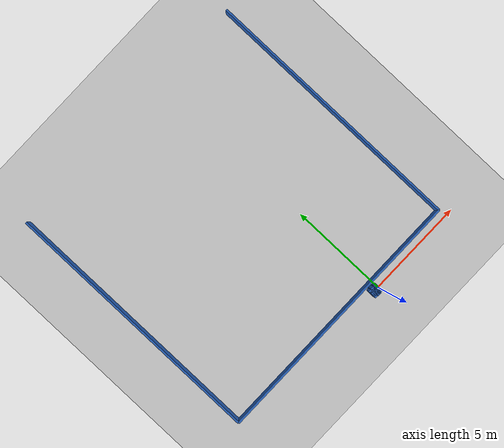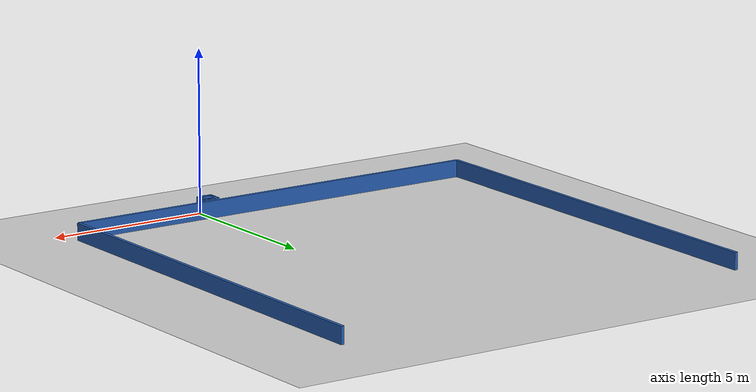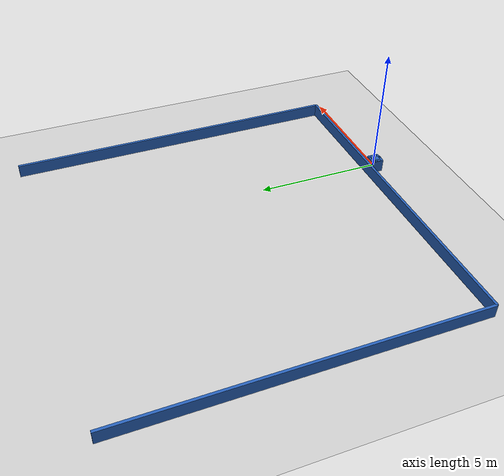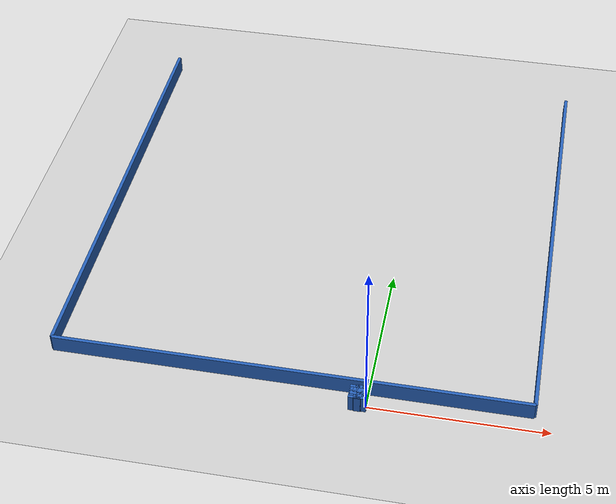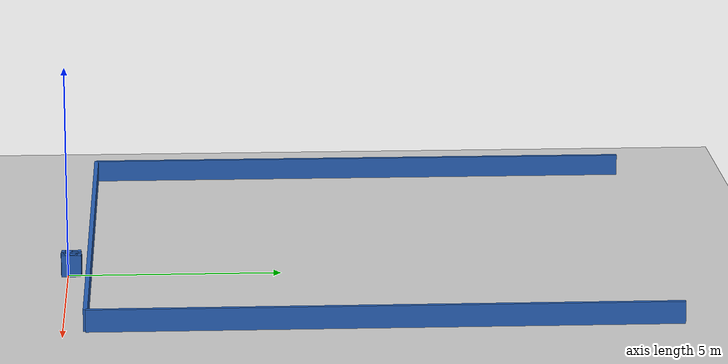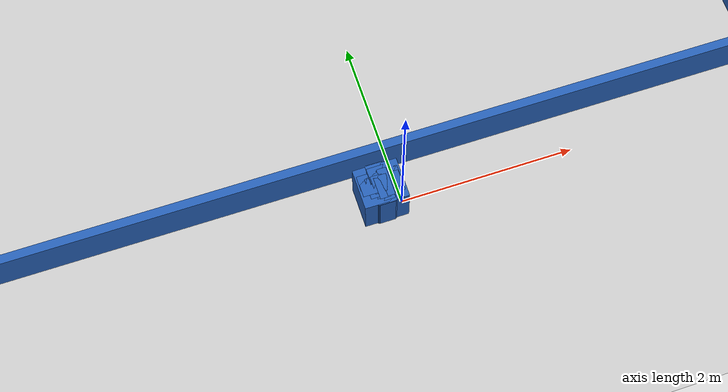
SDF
<?xml version="1.0" ?>
    <sdf version="1.5">
      <world name="default">
        <!-- A global light source -->
        <include>
          <uri>model://sun</uri>
        </include>
        <!-- A ground plane -->
        <include>
          <uri>model://ground_plane</uri>
        </include>

    <model name='libopen_space_final_T2B_148_40'>
      <static>1</static>
      <pose frame=''>-0.225000 0.075000 0.000000 0.000000 0.000000 0.000000</pose>
      <link name='link'>
        <inertial>
          <mass>1</mass>
          <inertia>
            <ixx>0.145833</ixx>
            <ixy>0</ixy>
            <ixz>0</ixz>
            <iyy>0.145833</iyy>
            <iyz>0</iyz>
            <izz>0.125</izz>
          </inertia>
        </inertial>
        <collision name='collision'>
          <geometry>
            <box>
              <size>0.18 0.21 1</size>
            </box>
          </geometry>
          <max_contacts>10</max_contacts>
          <surface>
            <contact>
              <ode/>
            </contact>
            <bounce/>
            <friction>
              <torsional>
                <ode/>
              </torsional>
              <ode/>
            </friction>
          </surface>
        </collision>
        <visual name='visual'>
          <geometry>
            <box>
              <size>0.18 0.21 1</size>
            </box>
          </geometry>
	    <material>
              <ambient>0.152000 0.379000 0.720000 1</ambient>
	      <diffuse>0.152000 0.379000 0.720000 1</diffuse>
          </material>
          <material>
            <script>
              <name>Gazebo/Grey</name>
              <uri>file://media/materials/scripts/gazebo.material</uri>
            </script>
          </material>
        </visual>
        <self_collide>0</self_collide>
        <kinematic>0</kinematic>
        <gravity>1</gravity>
      </link>
      <plugin name='libopen_space_final_T2B_148_40' filename='libopen_space_final_T2B_148_40.so'/>
    </model>

    <model name='libopen_space_final_T2B_64_52'>
      <static>1</static>
      <pose frame=''>-0.225000 0.075000 0.000000 0.000000 0.000000 0.000000</pose>
      <link name='link'>
        <inertial>
          <mass>1</mass>
          <inertia>
            <ixx>0.145833</ixx>
            <ixy>0</ixy>
            <ixz>0</ixz>
            <iyy>0.145833</iyy>
            <iyz>0</iyz>
            <izz>0.125</izz>
          </inertia>
        </inertial>
        <collision name='collision'>
          <geometry>
            <box>
              <size>0.31 0.29 1</size>
            </box>
          </geometry>
          <max_contacts>10</max_contacts>
          <surface>
            <contact>
              <ode/>
            </contact>
            <bounce/>
            <friction>
              <torsional>
                <ode/>
              </torsional>
              <ode/>
            </friction>
          </surface>
        </collision>
        <visual name='visual'>
          <geometry>
            <box>
              <size>0.31 0.29 1</size>
            </box>
          </geometry>
	    <material>
              <ambient>0.152000 0.379000 0.720000 1</ambient>
	      <diffuse>0.152000 0.379000 0.720000 1</diffuse>
          </material>
          <material>
            <script>
              <name>Gazebo/Grey</name>
              <uri>file://media/materials/scripts/gazebo.material</uri>
            </script>
          </material>
        </visual>
        <self_collide>0</self_collide>
        <kinematic>0</kinematic>
        <gravity>1</gravity>
      </link>
      <plugin name='libopen_space_final_T2B_64_52' filename='libopen_space_final_T2B_64_52.so'/>
    </model>

    <model name='libopen_space_final_T2B_90_15'>
      <static>1</static>
      <pose frame=''>-0.225000 0.075000 0.000000 0.000000 0.000000 0.000000</pose>
      <link name='link'>
        <inertial>
          <mass>1</mass>
          <inertia>
            <ixx>0.145833</ixx>
            <ixy>0</ixy>
            <ixz>0</ixz>
            <iyy>0.145833</iyy>
            <iyz>0</iyz>
            <izz>0.125</izz>
          </inertia>
        </inertial>
        <collision name='collision'>
          <geometry>
            <box>
              <size>0.18 0.49 1</size>
            </box>
          </geometry>
          <max_contacts>10</max_contacts>
          <surface>
            <contact>
              <ode/>
            </contact>
            <bounce/>
            <friction>
              <torsional>
                <ode/>
              </torsional>
              <ode/>
            </friction>
          </surface>
        </collision>
        <visual name='visual'>
          <geometry>
            <box>
              <size>0.18 0.49 1</size>
            </box>
          </geometry>
	    <material>
              <ambient>0.152000 0.379000 0.720000 1</ambient>
	      <diffuse>0.152000 0.379000 0.720000 1</diffuse>
          </material>
          <material>
            <script>
              <name>Gazebo/Grey</name>
              <uri>file://media/materials/scripts/gazebo.material</uri>
            </script>
          </material>
        </visual>
        <self_collide>0</self_collide>
        <kinematic>0</kinematic>
        <gravity>1</gravity>
      </link>
      <plugin name='libopen_space_final_T2B_90_15' filename='libopen_space_final_T2B_90_15.so'/>
    </model>

    <model name='libopen_space_final_T2B_111_18'>
      <static>1</static>
      <pose frame=''>-0.225000 0.075000 0.000000 0.000000 0.000000 0.000000</pose>
      <link name='link'>
        <inertial>
          <mass>1</mass>
          <inertia>
            <ixx>0.145833</ixx>
            <ixy>0</ixy>
            <ixz>0</ixz>
            <iyy>0.145833</iyy>
            <iyz>0</iyz>
            <izz>0.125</izz>
          </inertia>
        </inertial>
        <collision name='collision'>
          <geometry>
            <box>
              <size>0.20 0.41 1</size>
            </box>
          </geometry>
          <max_contacts>10</max_contacts>
          <surface>
            <contact>
              <ode/>
            </contact>
            <bounce/>
            <friction>
              <torsional>
                <ode/>
              </torsional>
              <ode/>
            </friction>
          </surface>
        </collision>
        <visual name='visual'>
          <geometry>
            <box>
              <size>0.20 0.41 1</size>
            </box>
          </geometry>
	    <material>
              <ambient>0.152000 0.379000 0.720000 1</ambient>
	      <diffuse>0.152000 0.379000 0.720000 1</diffuse>
          </material>
          <material>
            <script>
              <name>Gazebo/Grey</name>
              <uri>file://media/materials/scripts/gazebo.material</uri>
            </script>
          </material>
        </visual>
        <self_collide>0</self_collide>
        <kinematic>0</kinematic>
        <gravity>1</gravity>
      </link>
      <plugin name='libopen_space_final_T2B_111_18' filename='libopen_space_final_T2B_111_18.so'/>
    </model>

    <model name='libopen_space_final_T2B_115_16'>
      <static>1</static>
      <pose frame=''>-0.225000 0.075000 0.000000 0.000000 0.000000 0.000000</pose>
      <link name='link'>
        <inertial>
          <mass>1</mass>
          <inertia>
            <ixx>0.145833</ixx>
            <ixy>0</ixy>
            <ixz>0</ixz>
            <iyy>0.145833</iyy>
            <iyz>0</iyz>
            <izz>0.125</izz>
          </inertia>
        </inertial>
        <collision name='collision'>
          <geometry>
            <box>
              <size>0.12 0.35 1</size>
            </box>
          </geometry>
          <max_contacts>10</max_contacts>
          <surface>
            <contact>
              <ode/>
            </contact>
            <bounce/>
            <friction>
              <torsional>
                <ode/>
              </torsional>
              <ode/>
            </friction>
          </surface>
        </collision>
        <visual name='visual'>
          <geometry>
            <box>
              <size>0.12 0.35 1</size>
            </box>
          </geometry>
	    <material>
              <ambient>0.152000 0.379000 0.720000 1</ambient>
	      <diffuse>0.152000 0.379000 0.720000 1</diffuse>
          </material>
          <material>
            <script>
              <name>Gazebo/Grey</name>
              <uri>file://media/materials/scripts/gazebo.material</uri>
            </script>
          </material>
        </visual>
        <self_collide>0</self_collide>
        <kinematic>0</kinematic>
        <gravity>1</gravity>
      </link>
      <plugin name='libopen_space_final_T2B_115_16' filename='libopen_space_final_T2B_115_16.so'/>
    </model>

    <model name='libopen_space_final_T2B_90_76'>
      <static>1</static>
      <pose frame=''>-0.225000 0.075000 0.000000 0.000000 0.000000 0.000000</pose>
      <link name='link'>
        <inertial>
          <mass>1</mass>
          <inertia>
            <ixx>0.145833</ixx>
            <ixy>0</ixy>
            <ixz>0</ixz>
            <iyy>0.145833</iyy>
            <iyz>0</iyz>
            <izz>0.125</izz>
          </inertia>
        </inertial>
        <collision name='collision'>
          <geometry>
            <box>
              <size>0.29 0.20 1</size>
            </box>
          </geometry>
          <max_contacts>10</max_contacts>
          <surface>
            <contact>
              <ode/>
            </contact>
            <bounce/>
            <friction>
              <torsional>
                <ode/>
              </torsional>
              <ode/>
            </friction>
          </surface>
        </collision>
        <visual name='visual'>
          <geometry>
            <box>
              <size>0.29 0.20 1</size>
            </box>
          </geometry>
	    <material>
              <ambient>0.152000 0.379000 0.720000 1</ambient>
	      <diffuse>0.152000 0.379000 0.720000 1</diffuse>
          </material>
          <material>
            <script>
              <name>Gazebo/Grey</name>
              <uri>file://media/materials/scripts/gazebo.material</uri>
            </script>
          </material>
        </visual>
        <self_collide>0</self_collide>
        <kinematic>0</kinematic>
        <gravity>1</gravity>
      </link>
      <plugin name='libopen_space_final_T2B_90_76' filename='libopen_space_final_T2B_90_76.so'/>
    </model>

    <model name='libopen_space_final_T2B_119_99'>
      <static>1</static>
      <pose frame=''>-0.225000 0.075000 0.000000 0.000000 0.000000 0.000000</pose>
      <link name='link'>
        <inertial>
          <mass>1</mass>
          <inertia>
            <ixx>0.145833</ixx>
            <ixy>0</ixy>
            <ixz>0</ixz>
            <iyy>0.145833</iyy>
            <iyz>0</iyz>
            <izz>0.125</izz>
          </inertia>
        </inertial>
        <collision name='collision'>
          <geometry>
            <box>
              <size>0.21 0.48 1</size>
            </box>
          </geometry>
          <max_contacts>10</max_contacts>
          <surface>
            <contact>
              <ode/>
            </contact>
            <bounce/>
            <friction>
              <torsional>
                <ode/>
              </torsional>
              <ode/>
            </friction>
          </surface>
        </collision>
        <visual name='visual'>
          <geometry>
            <box>
              <size>0.21 0.48 1</size>
            </box>
          </geometry>
	    <material>
              <ambient>0.152000 0.379000 0.720000 1</ambient>
	      <diffuse>0.152000 0.379000 0.720000 1</diffuse>
          </material>
          <material>
            <script>
              <name>Gazebo/Grey</name>
              <uri>file://media/materials/scripts/gazebo.material</uri>
            </script>
          </material>
        </visual>
        <self_collide>0</self_collide>
        <kinematic>0</kinematic>
        <gravity>1</gravity>
      </link>
      <plugin name='libopen_space_final_T2B_119_99' filename='libopen_space_final_T2B_119_99.so'/>
    </model>

    <model name='libopen_space_final_T2B_90_95'>
      <static>1</static>
      <pose frame=''>-0.225000 0.075000 0.000000 0.000000 0.000000 0.000000</pose>
      <link name='link'>
        <inertial>
          <mass>1</mass>
          <inertia>
            <ixx>0.145833</ixx>
            <ixy>0</ixy>
            <ixz>0</ixz>
            <iyy>0.145833</iyy>
            <iyz>0</iyz>
            <izz>0.125</izz>
          </inertia>
        </inertial>
        <collision name='collision'>
          <geometry>
            <box>
              <size>0.45 0.19 1</size>
            </box>
          </geometry>
          <max_contacts>10</max_contacts>
          <surface>
            <contact>
              <ode/>
            </contact>
            <bounce/>
            <friction>
              <torsional>
                <ode/>
              </torsional>
              <ode/>
            </friction>
          </surface>
        </collision>
        <visual name='visual'>
          <geometry>
            <box>
              <size>0.45 0.19 1</size>
            </box>
          </geometry>
	    <material>
              <ambient>0.152000 0.379000 0.720000 1</ambient>
	      <diffuse>0.152000 0.379000 0.720000 1</diffuse>
          </material>
          <material>
            <script>
              <name>Gazebo/Grey</name>
              <uri>file://media/materials/scripts/gazebo.material</uri>
            </script>
          </material>
        </visual>
        <self_collide>0</self_collide>
        <kinematic>0</kinematic>
        <gravity>1</gravity>
      </link>
      <plugin name='libopen_space_final_T2B_90_95' filename='libopen_space_final_T2B_90_95.so'/>
    </model>

    <model name='libopen_space_final_T2B_56_75'>
      <static>1</static>
      <pose frame=''>-0.225000 0.075000 0.000000 0.000000 0.000000 0.000000</pose>
      <link name='link'>
        <inertial>
          <mass>1</mass>
          <inertia>
            <ixx>0.145833</ixx>
            <ixy>0</ixy>
            <ixz>0</ixz>
            <iyy>0.145833</iyy>
            <iyz>0</iyz>
            <izz>0.125</izz>
          </inertia>
        </inertial>
        <collision name='collision'>
          <geometry>
            <box>
              <size>0.46 0.30 1</size>
            </box>
          </geometry>
          <max_contacts>10</max_contacts>
          <surface>
            <contact>
              <ode/>
            </contact>
            <bounce/>
            <friction>
              <torsional>
                <ode/>
              </torsional>
              <ode/>
            </friction>
          </surface>
        </collision>
        <visual name='visual'>
          <geometry>
            <box>
              <size>0.46 0.30 1</size>
            </box>
          </geometry>
	    <material>
              <ambient>0.152000 0.379000 0.720000 1</ambient>
	      <diffuse>0.152000 0.379000 0.720000 1</diffuse>
          </material>
          <material>
            <script>
              <name>Gazebo/Grey</name>
              <uri>file://media/materials/scripts/gazebo.material</uri>
            </script>
          </material>
        </visual>
        <self_collide>0</self_collide>
        <kinematic>0</kinematic>
        <gravity>1</gravity>
      </link>
      <plugin name='libopen_space_final_T2B_56_75' filename='libopen_space_final_T2B_56_75.so'/>
    </model>

    <model name='libopen_space_final_T2B_123_13'>
      <static>1</static>
      <pose frame=''>-0.225000 0.075000 0.000000 0.000000 0.000000 0.000000</pose>
      <link name='link'>
        <inertial>
          <mass>1</mass>
          <inertia>
            <ixx>0.145833</ixx>
            <ixy>0</ixy>
            <ixz>0</ixz>
            <iyy>0.145833</iyy>
            <iyz>0</iyz>
            <izz>0.125</izz>
          </inertia>
        </inertial>
        <collision name='collision'>
          <geometry>
            <box>
              <size>0.22 0.33 1</size>
            </box>
          </geometry>
          <max_contacts>10</max_contacts>
          <surface>
            <contact>
              <ode/>
            </contact>
            <bounce/>
            <friction>
              <torsional>
                <ode/>
              </torsional>
              <ode/>
            </friction>
          </surface>
        </collision>
        <visual name='visual'>
          <geometry>
            <box>
              <size>0.22 0.33 1</size>
            </box>
          </geometry>
	    <material>
              <ambient>0.152000 0.379000 0.720000 1</ambient>
	      <diffuse>0.152000 0.379000 0.720000 1</diffuse>
          </material>
          <material>
            <script>
              <name>Gazebo/Grey</name>
              <uri>file://media/materials/scripts/gazebo.material</uri>
            </script>
          </material>
        </visual>
        <self_collide>0</self_collide>
        <kinematic>0</kinematic>
        <gravity>1</gravity>
      </link>
      <plugin name='libopen_space_final_T2B_123_13' filename='libopen_space_final_T2B_123_13.so'/>
    </model>

    <model name='libopen_space_final_T2B_85_62'>
      <static>1</static>
      <pose frame=''>-0.225000 0.075000 0.000000 0.000000 0.000000 0.000000</pose>
      <link name='link'>
        <inertial>
          <mass>1</mass>
          <inertia>
            <ixx>0.145833</ixx>
            <ixy>0</ixy>
            <ixz>0</ixz>
            <iyy>0.145833</iyy>
            <iyz>0</iyz>
            <izz>0.125</izz>
          </inertia>
        </inertial>
        <collision name='collision'>
          <geometry>
            <box>
              <size>0.50 0.46 1</size>
            </box>
          </geometry>
          <max_contacts>10</max_contacts>
          <surface>
            <contact>
              <ode/>
            </contact>
            <bounce/>
            <friction>
              <torsional>
                <ode/>
              </torsional>
              <ode/>
            </friction>
          </surface>
        </collision>
        <visual name='visual'>
          <geometry>
            <box>
              <size>0.50 0.46 1</size>
            </box>
          </geometry>
	    <material>
              <ambient>0.152000 0.379000 0.720000 1</ambient>
	      <diffuse>0.152000 0.379000 0.720000 1</diffuse>
          </material>
          <material>
            <script>
              <name>Gazebo/Grey</name>
              <uri>file://media/materials/scripts/gazebo.material</uri>
            </script>
          </material>
        </visual>
        <self_collide>0</self_collide>
        <kinematic>0</kinematic>
        <gravity>1</gravity>
      </link>
      <plugin name='libopen_space_final_T2B_85_62' filename='libopen_space_final_T2B_85_62.so'/>
    </model>

        <model name='bottom_wall'>
          <static>1</static>
          <pose frame=''>-2.25 0.5 0.000000 0.000000 0.000000 1.57079632</pose>
          <link name='link'>
            <inertial>
            <mass>1</mass>
            <inertia>
              <ixx>0.145833</ixx>
              <ixy>0</ixy>
              <ixz>0</ixz>
              <iyy>0.145833</iyy>
              <iyz>0</iyz>
              <izz>0.125</izz>
            </inertia>
            </inertial>
            <collision name='collision'>
            <geometry>
              <box>
              <size>0.1 13.5 1</size>
              </box>
            </geometry>
            <max_contacts>10</max_contacts>
            <surface>
              <contact>
              <ode/>
              </contact>
              <bounce/>
              <friction>
              <torsional>
                <ode/>
              </torsional>
              <ode/>
              </friction>
            </surface>
            </collision>
            <visual name='visual'>
            <geometry>
              <box>
              <size>0.1 13.5 1</size>
              </box>
            </geometry>
            <material>
              <ambient>0.152000 0.379000 0.720000 1</ambient>
            <diffuse>0.152000 0.379000 0.720000 1</diffuse>
            </material>
            <material>
              <script>
              <name>Gazebo/Grey</name>
              <uri>file://media/materials/scripts/gazebo.material</uri>
              </script>
            </material>
            </visual>
            <self_collide>0</self_collide>
            <kinematic>0</kinematic>
            <gravity>1</gravity>
          </link>
        </model>

        <model name='left_wall'>
          <static>1</static>
          <pose frame=''>-9 7.25 0.000000 0.000000 0.000000 0.000000</pose>
          <link name='link'>
            <inertial>
            <mass>1</mass>
            <inertia>
              <ixx>0.145833</ixx>
              <ixy>0</ixy>
              <ixz>0</ixz>
              <iyy>0.145833</iyy>
              <iyz>0</iyz>
              <izz>0.125</izz>
            </inertia>
            </inertial>
            <collision name='collision'>
            <geometry>
              <box>
              <size>0.1 13.5 1</size>
              </box>
            </geometry>
            <max_contacts>10</max_contacts>
            <surface>
              <contact>
              <ode/>
              </contact>
              <bounce/>
              <friction>
              <torsional>
                <ode/>
              </torsional>
              <ode/>
              </friction>
            </surface>
            </collision>
            <visual name='visual'>
            <geometry>
              <box>
              <size>0.1 13.5 1</size>
              </box>
            </geometry>
            <material>
              <ambient>0.152000 0.379000 0.720000 1</ambient>
            <diffuse>0.152000 0.379000 0.720000 1</diffuse>
            </material>
            <material>
              <script>
              <name>Gazebo/Grey</name>
              <uri>file://media/materials/scripts/gazebo.material</uri>
              </script>
            </material>
            </visual>
            <self_collide>0</self_collide>
            <kinematic>0</kinematic>
            <gravity>1</gravity>
          </link>
        </model>

        <model name='right_wall'>
          <static>1</static>
          <pose frame=''>4.5 7.25 0.000000 0.000000 0.000000 0.000000</pose>
          <link name='link'>
            <inertial>
            <mass>1</mass>
            <inertia>
              <ixx>0.145833</ixx>
              <ixy>0</ixy>
              <ixz>0</ixz>
              <iyy>0.145833</iyy>
              <iyz>0</iyz>
              <izz>0.125</izz>
            </inertia>
            </inertial>
            <collision name='collision'>
            <geometry>
              <box>
              <size>0.1 13.5 1</size>
              </box>
            </geometry>
            <max_contacts>10</max_contacts>
            <surface>
              <contact>
              <ode/>
              </contact>
              <bounce/>
              <friction>
              <torsional>
                <ode/>
              </torsional>
              <ode/>
              </friction>
            </surface>
            </collision>
            <visual name='visual'>
            <geometry>
              <box>
              <size>0.1 13.5 1</size>
              </box>
            </geometry>
            <material>
              <ambient>0.152000 0.379000 0.720000 1</ambient>
            <diffuse>0.152000 0.379000 0.720000 1</diffuse>
            </material>
            <material>
              <script>
              <name>Gazebo/Grey</name>
              <uri>file://media/materials/scripts/gazebo.material</uri>
              </script>
            </material>
            </visual>
            <self_collide>0</self_collide>
            <kinematic>0</kinematic>
            <gravity>1</gravity>
          </link>
        </model>

      </world>
    </sdf>"
